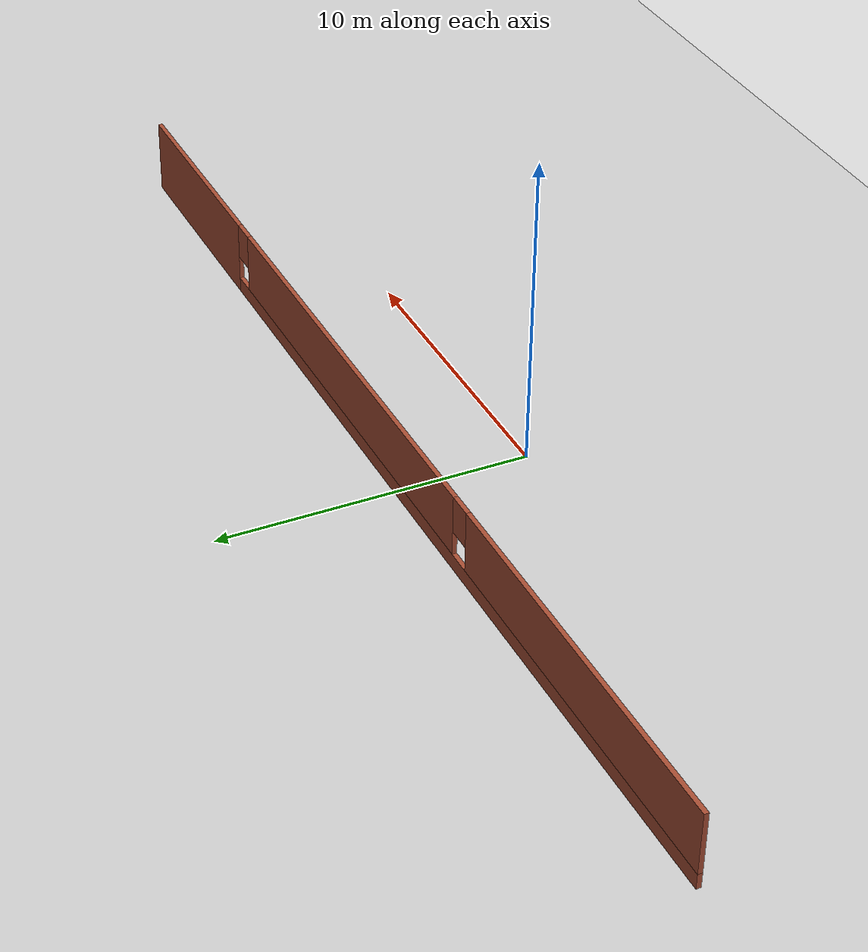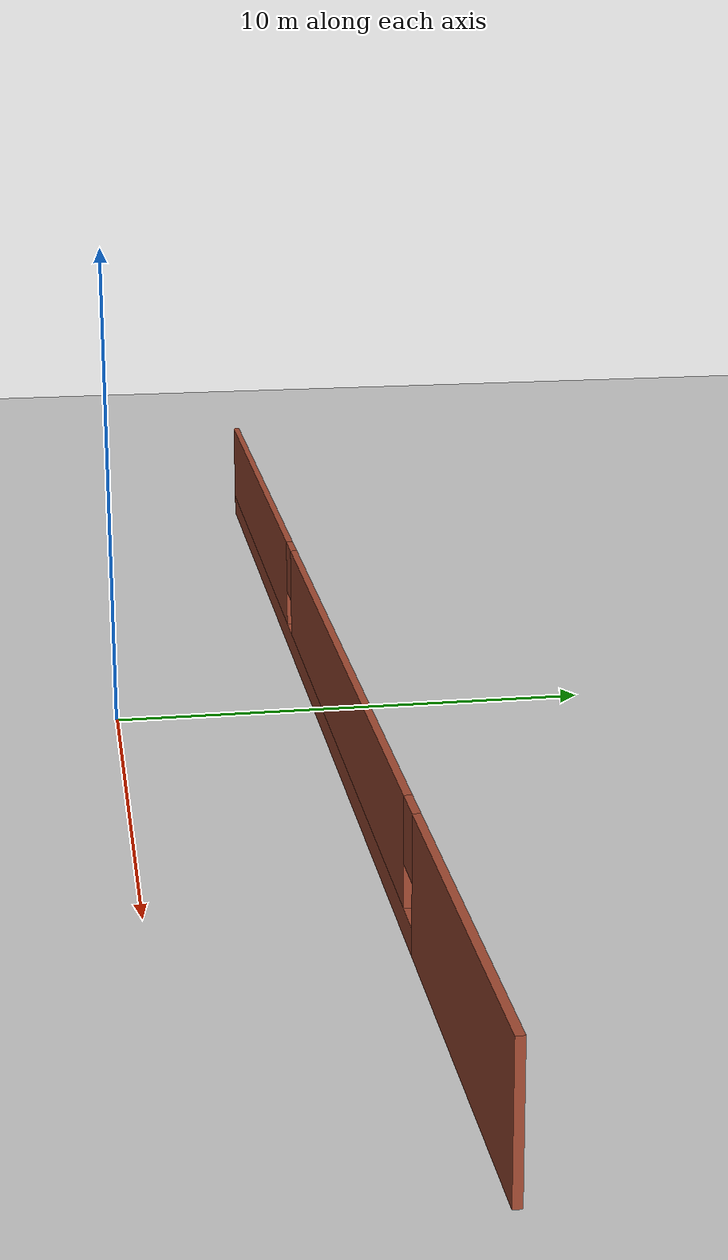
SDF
<sdf version="1.6">
 <world name="default">
  <model name="ground_plane">
   <static>1</static>
   <link name="link">
    <collision name="collision">
     <geometry><plane><normal>0 0 1</normal><size>100 100</size></plane></geometry>
     <surface><friction><ode><mu>100</mu><mu2>50</mu2></ode></friction></surface>
    </collision>
    <visual name="visual">
     <cast_shadows>0</cast_shadows>
     <geometry><plane><normal>0 0 1</normal><size>100 100</size></plane></geometry>
     <material>
      <script><uri>file://media/materials/scripts/gazebo.material</uri><name>Gazebo/Grey</name></script>
     </material>
    </visual>
   </link>
  </model>
  <model name="wonkyBuilding">
   <link name="Wall_39">
    <pose>6.50411 14.9688 0 0 0 -3.13871</pose>
    <visual name="Wall_39_Visual_0">
     <pose>-14.7498 0 1.25 0 -0 0</pose>
     <geometry><box><size>7.4924 0.15 2.5</size></box></geometry>
     <material>
      <script><uri>file://media/materials/scripts/gazebo.material</uri><name>Gazebo/Bricks</name></script>
      <ambient>1 1 1 1</ambient>
      <shader type="pixel"/>
      <diffuse>1 1 1 1</diffuse>
      <specular>0.2 0.2 0.2 1</specular>
      <emissive>0 0 0 1</emissive>
     </material>
     <meta><layer>0</layer></meta>
    </visual>
    <visual name="Wall_39_Visual_1">
     <pose>3.7462 0 0.25 0 -0 0</pose>
     <geometry><box><size>29.4996 0.15 0.5</size></box></geometry>
     <material>
      <script><uri>file://media/materials/scripts/gazebo.material</uri><name>Gazebo/Bricks</name></script>
      <ambient>1 1 1 1</ambient>
      <shader type="pixel"/>
      <diffuse>1 1 1 1</diffuse>
      <specular>0.2 0.2 0.2 1</specular>
      <emissive>0 0 0 1</emissive>
     </material>
     <meta><layer>0</layer></meta>
    </visual>
    <visual name="Wall_39_Visual_2">
     <pose>-2.58739 0 1.5 0 -0 0</pose>
     <geometry><box><size>15.2324 0.15 2</size></box></geometry>
     <material>
      <script><uri>file://media/materials/scripts/gazebo.material</uri><name>Gazebo/Bricks</name></script>
      <ambient>1 1 1 1</ambient>
      <shader type="pixel"/>
      <diffuse>1 1 1 1</diffuse>
      <specular>0.2 0.2 0.2 1</specular>
      <emissive>0 0 0 1</emissive>
     </material>
     <meta><layer>0</layer></meta>
    </visual>
    <visual name="Wall_39_Visual_3">
     <pose>12.1624 0 1.5 0 -0 0</pose>
     <geometry><box><size>12.6672 0.15 2</size></box></geometry>
     <material>
      <script><uri>file://media/materials/scripts/gazebo.material</uri><name>Gazebo/Bricks</name></script>
      <ambient>1 1 1 1</ambient>
      <shader type="pixel"/>
      <diffuse>1 1 1 1</diffuse>
      <specular>0.2 0.2 0.2 1</specular>
      <emissive>0 0 0 1</emissive>
     </material>
     <meta><layer>0</layer></meta>
    </visual>
    <visual name="Wall_39_Visual_4">
     <pose>-10.6036 0 1.9 0 -0 0</pose>
     <geometry><box><size>0.8 0.15 1.2</size></box></geometry>
     <material>
      <script><uri>file://media/materials/scripts/gazebo.material</uri><name>Gazebo/Bricks</name></script>
      <ambient>1 1 1 1</ambient>
      <shader type="pixel"/>
      <diffuse>1 1 1 1</diffuse>
      <specular>0.2 0.2 0.2 1</specular>
      <emissive>0 0 0 1</emissive>
     </material>
     <meta><layer>0</layer></meta>
    </visual>
    <visual name="Wall_39_Visual_5">
     <pose>5.4288 0 1.9 0 -0 0</pose>
     <geometry><box><size>0.8 0.15 1.2</size></box></geometry>
     <material>
      <script><uri>file://media/materials/scripts/gazebo.material</uri><name>Gazebo/Bricks</name></script>
      <ambient>1 1 1 1</ambient>
      <shader type="pixel"/>
      <diffuse>1 1 1 1</diffuse>
      <specular>0.2 0.2 0.2 1</specular>
      <emissive>0 0 0 1</emissive>
     </material>
     <meta><layer>0</layer></meta>
    </visual>
    <collision name="Wall_39_Collision_4">
     <pose>-10.6036 0 1.9 0 -0 0</pose>
     <geometry><box><size>0.8 0.15 1.2</size></box></geometry>
     <surface>
      <friction>
       <ode><mu>1</mu><mu2>1</mu2><fdir1>0 0 0</fdir1><slip1>0</slip1><slip2>0</slip2></ode>
       <torsional>
        <coefficient>1</coefficient>
        <patch_radius>0</patch_radius>
        <surface_radius>0</surface_radius>
        <use_patch_radius>1</use_patch_radius>
        <ode><slip>0</slip></ode>
       </torsional>
      </friction>
      <bounce><restitution_coefficient>0</restitution_coefficient><threshold>1e+06</threshold></bounce>
      <contact>
       <collide_without_contact>0</collide_without_contact>
       <collide_without_contact_bitmask>1</collide_without_contact_bitmask>
       <collide_bitmask>1</collide_bitmask>
       <ode>
        <soft_cfm>0</soft_cfm>
        <soft_erp>0.2</soft_erp>
        <kp>1e+13</kp>
        <kd>1</kd>
        <max_vel>0.01</max_vel>
        <min_depth>0</min_depth>
       </ode>
       <bullet>
        <split_impulse>1</split_impulse>
        <split_impulse_penetration_threshold>-0.01</split_impulse_penetration_threshold>
        <soft_cfm>0</soft_cfm>
        <soft_erp>0.2</soft_erp>
        <kp>1e+13</kp>
        <kd>1</kd>
       </bullet>
      </contact>
     </surface>
    </collision>
    <collision name="Wall_39_Collision_3">
     <pose>12.1624 0 1.5 0 -0 0</pose>
     <geometry><box><size>12.6672 0.15 2</size></box></geometry>
     <surface>
      <friction>
       <ode><mu>1</mu><mu2>1</mu2><fdir1>0 0 0</fdir1><slip1>0</slip1><slip2>0</slip2></ode>
       <torsional>
        <coefficient>1</coefficient>
        <patch_radius>0</patch_radius>
        <surface_radius>0</surface_radius>
        <use_patch_radius>1</use_patch_radius>
        <ode><slip>0</slip></ode>
       </torsional>
      </friction>
      <bounce><restitution_coefficient>0</restitution_coefficient><threshold>1e+06</threshold></bounce>
      <contact>
       <collide_without_contact>0</collide_without_contact>
       <collide_without_contact_bitmask>1</collide_without_contact_bitmask>
       <collide_bitmask>1</collide_bitmask>
       <ode>
        <soft_cfm>0</soft_cfm>
        <soft_erp>0.2</soft_erp>
        <kp>1e+13</kp>
        <kd>1</kd>
        <max_vel>0.01</max_vel>
        <min_depth>0</min_depth>
       </ode>
       <bullet>
        <split_impulse>1</split_impulse>
        <split_impulse_penetration_threshold>-0.01</split_impulse_penetration_threshold>
        <soft_cfm>0</soft_cfm>
        <soft_erp>0.2</soft_erp>
        <kp>1e+13</kp>
        <kd>1</kd>
       </bullet>
      </contact>
     </surface>
    </collision>
    <collision name="Wall_39_Collision_0">
     <pose>-14.7498 0 1.25 0 -0 0</pose>
     <geometry><box><size>7.4924 0.15 2.5</size></box></geometry>
     <surface>
      <friction>
       <ode><mu>1</mu><mu2>1</mu2><fdir1>0 0 0</fdir1><slip1>0</slip1><slip2>0</slip2></ode>
       <torsional>
        <coefficient>1</coefficient>
        <patch_radius>0</patch_radius>
        <surface_radius>0</surface_radius>
        <use_patch_radius>1</use_patch_radius>
        <ode><slip>0</slip></ode>
       </torsional>
      </friction>
      <bounce><restitution_coefficient>0</restitution_coefficient><threshold>1e+06</threshold></bounce>
      <contact>
       <collide_without_contact>0</collide_without_contact>
       <collide_without_contact_bitmask>1</collide_without_contact_bitmask>
       <collide_bitmask>1</collide_bitmask>
       <ode>
        <soft_cfm>0</soft_cfm>
        <soft_erp>0.2</soft_erp>
        <kp>1e+13</kp>
        <kd>1</kd>
        <max_vel>0.01</max_vel>
        <min_depth>0</min_depth>
       </ode>
       <bullet>
        <split_impulse>1</split_impulse>
        <split_impulse_penetration_threshold>-0.01</split_impulse_penetration_threshold>
        <soft_cfm>0</soft_cfm>
        <soft_erp>0.2</soft_erp>
        <kp>1e+13</kp>
        <kd>1</kd>
       </bullet>
      </contact>
     </surface>
    </collision>
    <collision name="Wall_39_Collision_1">
     <pose>3.7462 0 0.25 0 -0 0</pose>
     <geometry><box><size>29.4996 0.15 0.5</size></box></geometry>
     <surface>
      <friction>
       <ode><mu>1</mu><mu2>1</mu2><fdir1>0 0 0</fdir1><slip1>0</slip1><slip2>0</slip2></ode>
       <torsional>
        <coefficient>1</coefficient>
        <patch_radius>0</patch_radius>
        <surface_radius>0</surface_radius>
        <use_patch_radius>1</use_patch_radius>
        <ode><slip>0</slip></ode>
       </torsional>
      </friction>
      <bounce><restitution_coefficient>0</restitution_coefficient><threshold>1e+06</threshold></bounce>
      <contact>
       <collide_without_contact>0</collide_without_contact>
       <collide_without_contact_bitmask>1</collide_without_contact_bitmask>
       <collide_bitmask>1</collide_bitmask>
       <ode>
        <soft_cfm>0</soft_cfm>
        <soft_erp>0.2</soft_erp>
        <kp>1e+13</kp>
        <kd>1</kd>
        <max_vel>0.01</max_vel>
        <min_depth>0</min_depth>
       </ode>
       <bullet>
        <split_impulse>1</split_impulse>
        <split_impulse_penetration_threshold>-0.01</split_impulse_penetration_threshold>
        <soft_cfm>0</soft_cfm>
        <soft_erp>0.2</soft_erp>
        <kp>1e+13</kp>
        <kd>1</kd>
       </bullet>
      </contact>
     </surface>
    </collision>
    <collision name="Wall_39_Collision_2">
     <pose>-2.58739 0 1.5 0 -0 0</pose>
     <geometry><box><size>15.2324 0.15 2</size></box></geometry>
     <surface>
      <friction>
       <ode><mu>1</mu><mu2>1</mu2><fdir1>0 0 0</fdir1><slip1>0</slip1><slip2>0</slip2></ode>
       <torsional>
        <coefficient>1</coefficient>
        <patch_radius>0</patch_radius>
        <surface_radius>0</surface_radius>
        <use_patch_radius>1</use_patch_radius>
        <ode><slip>0</slip></ode>
       </torsional>
      </friction>
      <bounce><restitution_coefficient>0</restitution_coefficient><threshold>1e+06</threshold></bounce>
      <contact>
       <collide_without_contact>0</collide_without_contact>
       <collide_without_contact_bitmask>1</collide_without_contact_bitmask>
       <collide_bitmask>1</collide_bitmask>
       <ode>
        <soft_cfm>0</soft_cfm>
        <soft_erp>0.2</soft_erp>
        <kp>1e+13</kp>
        <kd>1</kd>
        <max_vel>0.01</max_vel>
        <min_depth>0</min_depth>
       </ode>
       <bullet>
        <split_impulse>1</split_impulse>
        <split_impulse_penetration_threshold>-0.01</split_impulse_penetration_threshold>
        <soft_cfm>0</soft_cfm>
        <soft_erp>0.2</soft_erp>
        <kp>1e+13</kp>
        <kd>1</kd>
       </bullet>
      </contact>
     </surface>
    </collision>
    <collision name="Wall_39_Collision_5">
     <pose>5.4288 0 1.9 0 -0 0</pose>
     <geometry><box><size>0.8 0.15 1.2</size></box></geometry>
     <surface>
      <friction>
       <ode><mu>1</mu><mu2>1</mu2><fdir1>0 0 0</fdir1><slip1>0</slip1><slip2>0</slip2></ode>
       <torsional>
        <coefficient>1</coefficient>
        <patch_radius>0</patch_radius>
        <surface_radius>0</surface_radius>
        <use_patch_radius>1</use_patch_radius>
        <ode><slip>0</slip></ode>
       </torsional>
      </friction>
      <bounce><restitution_coefficient>0</restitution_coefficient><threshold>1e+06</threshold></bounce>
      <contact>
       <collide_without_contact>0</collide_without_contact>
       <collide_without_contact_bitmask>1</collide_without_contact_bitmask>
       <collide_bitmask>1</collide_bitmask>
       <ode>
        <soft_cfm>0</soft_cfm>
        <soft_erp>0.2</soft_erp>
        <kp>1e+13</kp>
        <kd>1</kd>
        <max_vel>0.01</max_vel>
        <min_depth>0</min_depth>
       </ode>
       <bullet>
        <split_impulse>1</split_impulse>
        <split_impulse_penetration_threshold>-0.01</split_impulse_penetration_threshold>
        <soft_cfm>0</soft_cfm>
        <soft_erp>0.2</soft_erp>
        <kp>1e+13</kp>
        <kd>1</kd>
       </bullet>
      </contact>
     </surface>
    </collision>
   </link>
   <static>1</static>
   <pose>-5.33653 -10.6887 0 0 -0 0</pose>
  </model>
 </world>
</sdf>
